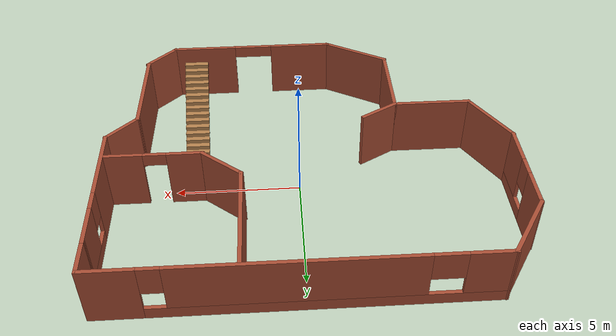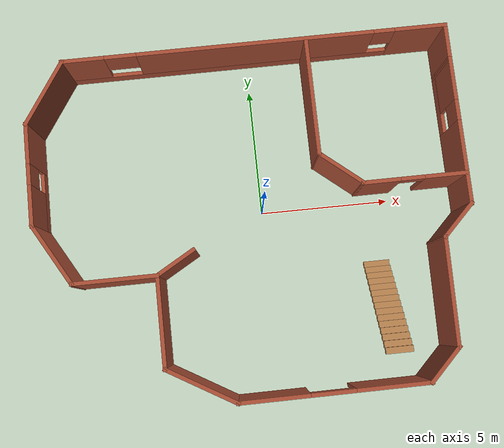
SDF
<?xml version='1.0'?>
<sdf version='1.7'>
  <model name='my_building'>
    <pose>-0.436912 -0.411084 0 0 -0 0</pose>

    <link name='Stairs_1'>
      <visual name='Stairs_1_Visual_0'>
        <pose>4.72294 -2.02924 0.083333 0 -0 0</pose>
        <geometry>
          <box>
            <size>1 0.233333 0.166667</size>
          </box>
        </geometry>
        <material>
          <script>
            <uri>file://media/materials/scripts/gazebo.material</uri>
            <name>Gazebo/Wood</name>
          </script>
          <ambient>1 1 1 1</ambient>
        </material>
        <meta>
          <layer>0</layer>
        </meta>
      </visual>
      <collision name='Stairs_1_Collision_0'>
        <geometry>
          <box>
            <size>1 0.233333 0.166667</size>
          </box>
        </geometry>
        <pose>4.72294 -2.02924 0.083333 0 -0 0</pose>
      </collision>
      <visual name='Stairs_1_Visual_1'>
        <pose>4.72294 -2.26257 0.25 0 -0 0</pose>
        <geometry>
          <box>
            <size>1 0.233333 0.166667</size>
          </box>
        </geometry>
        <material>
          <script>
            <uri>file://media/materials/scripts/gazebo.material</uri>
            <name>Gazebo/Wood</name>
          </script>
          <ambient>1 1 1 1</ambient>
        </material>
        <meta>
          <layer>0</layer>
        </meta>
      </visual>
      <collision name='Stairs_1_Collision_1'>
        <geometry>
          <box>
            <size>1 0.233333 0.166667</size>
          </box>
        </geometry>
        <pose>4.72294 -2.26257 0.25 0 -0 0</pose>
      </collision>
      <visual name='Stairs_1_Visual_2'>
        <pose>4.72294 -2.49591 0.416667 0 -0 0</pose>
        <geometry>
          <box>
            <size>1 0.233333 0.166667</size>
          </box>
        </geometry>
        <material>
          <script>
            <uri>file://media/materials/scripts/gazebo.material</uri>
            <name>Gazebo/Wood</name>
          </script>
          <ambient>1 1 1 1</ambient>
        </material>
        <meta>
          <layer>0</layer>
        </meta>
      </visual>
      <collision name='Stairs_1_Collision_2'>
        <geometry>
          <box>
            <size>1 0.233333 0.166667</size>
          </box>
        </geometry>
        <pose>4.72294 -2.49591 0.416667 0 -0 0</pose>
      </collision>
      <visual name='Stairs_1_Visual_3'>
        <pose>4.72294 -2.72924 0.583333 0 -0 0</pose>
        <geometry>
          <box>
            <size>1 0.233333 0.166667</size>
          </box>
        </geometry>
        <material>
          <script>
            <uri>file://media/materials/scripts/gazebo.material</uri>
            <name>Gazebo/Wood</name>
          </script>
          <ambient>1 1 1 1</ambient>
        </material>
        <meta>
          <layer>0</layer>
        </meta>
      </visual>
      <collision name='Stairs_1_Collision_3'>
        <geometry>
          <box>
            <size>1 0.233333 0.166667</size>
          </box>
        </geometry>
        <pose>4.72294 -2.72924 0.583333 0 -0 0</pose>
      </collision>
      <visual name='Stairs_1_Visual_4'>
        <pose>4.72294 -2.96257 0.75 0 -0 0</pose>
        <geometry>
          <box>
            <size>1 0.233333 0.166667</size>
          </box>
        </geometry>
        <material>
          <script>
            <uri>file://media/materials/scripts/gazebo.material</uri>
            <name>Gazebo/Wood</name>
          </script>
          <ambient>1 1 1 1</ambient>
        </material>
        <meta>
          <layer>0</layer>
        </meta>
      </visual>
      <collision name='Stairs_1_Collision_4'>
        <geometry>
          <box>
            <size>1 0.233333 0.166667</size>
          </box>
        </geometry>
        <pose>4.72294 -2.96257 0.75 0 -0 0</pose>
      </collision>
      <visual name='Stairs_1_Visual_5'>
        <pose>4.72294 -3.19591 0.916667 0 -0 0</pose>
        <geometry>
          <box>
            <size>1 0.233333 0.166667</size>
          </box>
        </geometry>
        <material>
          <script>
            <uri>file://media/materials/scripts/gazebo.material</uri>
            <name>Gazebo/Wood</name>
          </script>
          <ambient>1 1 1 1</ambient>
        </material>
        <meta>
          <layer>0</layer>
        </meta>
      </visual>
      <collision name='Stairs_1_Collision_5'>
        <geometry>
          <box>
            <size>1 0.233333 0.166667</size>
          </box>
        </geometry>
        <pose>4.72294 -3.19591 0.916667 0 -0 0</pose>
      </collision>
      <visual name='Stairs_1_Visual_6'>
        <pose>4.72294 -3.42924 1.08333 0 -0 0</pose>
        <geometry>
          <box>
            <size>1 0.233333 0.166667</size>
          </box>
        </geometry>
        <material>
          <script>
            <uri>file://media/materials/scripts/gazebo.material</uri>
            <name>Gazebo/Wood</name>
          </script>
          <ambient>1 1 1 1</ambient>
        </material>
        <meta>
          <layer>0</layer>
        </meta>
      </visual>
      <collision name='Stairs_1_Collision_6'>
        <geometry>
          <box>
            <size>1 0.233333 0.166667</size>
          </box>
        </geometry>
        <pose>4.72294 -3.42924 1.08333 0 -0 0</pose>
      </collision>
      <visual name='Stairs_1_Visual_7'>
        <pose>4.72294 -3.66257 1.25 0 -0 0</pose>
        <geometry>
          <box>
            <size>1 0.233333 0.166667</size>
          </box>
        </geometry>
        <material>
          <script>
            <uri>file://media/materials/scripts/gazebo.material</uri>
            <name>Gazebo/Wood</name>
          </script>
          <ambient>1 1 1 1</ambient>
        </material>
        <meta>
          <layer>0</layer>
        </meta>
      </visual>
      <collision name='Stairs_1_Collision_7'>
        <geometry>
          <box>
            <size>1 0.233333 0.166667</size>
          </box>
        </geometry>
        <pose>4.72294 -3.66257 1.25 0 -0 0</pose>
      </collision>
      <visual name='Stairs_1_Visual_8'>
        <pose>4.72294 -3.89591 1.41667 0 -0 0</pose>
        <geometry>
          <box>
            <size>1 0.233333 0.166667</size>
          </box>
        </geometry>
        <material>
          <script>
            <uri>file://media/materials/scripts/gazebo.material</uri>
            <name>Gazebo/Wood</name>
          </script>
          <ambient>1 1 1 1</ambient>
        </material>
        <meta>
          <layer>0</layer>
        </meta>
      </visual>
      <collision name='Stairs_1_Collision_8'>
        <geometry>
          <box>
            <size>1 0.233333 0.166667</size>
          </box>
        </geometry>
        <pose>4.72294 -3.89591 1.41667 0 -0 0</pose>
      </collision>
      <visual name='Stairs_1_Visual_9'>
        <pose>4.72294 -4.12924 1.58333 0 -0 0</pose>
        <geometry>
          <box>
            <size>1 0.233333 0.166667</size>
          </box>
        </geometry>
        <material>
          <script>
            <uri>file://media/materials/scripts/gazebo.material</uri>
            <name>Gazebo/Wood</name>
          </script>
          <ambient>1 1 1 1</ambient>
        </material>
        <meta>
          <layer>0</layer>
        </meta>
      </visual>
      <collision name='Stairs_1_Collision_9'>
        <geometry>
          <box>
            <size>1 0.233333 0.166667</size>
          </box>
        </geometry>
        <pose>4.72294 -4.12924 1.58333 0 -0 0</pose>
      </collision>
      <visual name='Stairs_1_Visual_10'>
        <pose>4.72294 -4.36257 1.75 0 -0 0</pose>
        <geometry>
          <box>
            <size>1 0.233333 0.166667</size>
          </box>
        </geometry>
        <material>
          <script>
            <uri>file://media/materials/scripts/gazebo.material</uri>
            <name>Gazebo/Wood</name>
          </script>
          <ambient>1 1 1 1</ambient>
        </material>
        <meta>
          <layer>0</layer>
        </meta>
      </visual>
      <collision name='Stairs_1_Collision_10'>
        <geometry>
          <box>
            <size>1 0.233333 0.166667</size>
          </box>
        </geometry>
        <pose>4.72294 -4.36257 1.75 0 -0 0</pose>
      </collision>
      <visual name='Stairs_1_Visual_11'>
        <pose>4.72294 -4.59591 1.91667 0 -0 0</pose>
        <geometry>
          <box>
            <size>1 0.233333 0.166667</size>
          </box>
        </geometry>
        <material>
          <script>
            <uri>file://media/materials/scripts/gazebo.material</uri>
            <name>Gazebo/Wood</name>
          </script>
          <ambient>1 1 1 1</ambient>
        </material>
        <meta>
          <layer>0</layer>
        </meta>
      </visual>
      <collision name='Stairs_1_Collision_11'>
        <geometry>
          <box>
            <size>1 0.233333 0.166667</size>
          </box>
        </geometry>
        <pose>4.72294 -4.59591 1.91667 0 -0 0</pose>
      </collision>
      <visual name='Stairs_1_Visual_12'>
        <pose>4.72294 -4.82924 2.08333 0 -0 0</pose>
        <geometry>
          <box>
            <size>1 0.233333 0.166667</size>
          </box>
        </geometry>
        <material>
          <script>
            <uri>file://media/materials/scripts/gazebo.material</uri>
            <name>Gazebo/Wood</name>
          </script>
          <ambient>1 1 1 1</ambient>
        </material>
        <meta>
          <layer>0</layer>
        </meta>
      </visual>
      <collision name='Stairs_1_Collision_12'>
        <geometry>
          <box>
            <size>1 0.233333 0.166667</size>
          </box>
        </geometry>
        <pose>4.72294 -4.82924 2.08333 0 -0 0</pose>
      </collision>
      <visual name='Stairs_1_Visual_13'>
        <pose>4.72294 -5.06257 2.25 0 -0 0</pose>
        <geometry>
          <box>
            <size>1 0.233333 0.166667</size>
          </box>
        </geometry>
        <material>
          <script>
            <uri>file://media/materials/scripts/gazebo.material</uri>
            <name>Gazebo/Wood</name>
          </script>
          <ambient>1 1 1 1</ambient>
        </material>
        <meta>
          <layer>0</layer>
        </meta>
      </visual>
      <collision name='Stairs_1_Collision_13'>
        <geometry>
          <box>
            <size>1 0.233333 0.166667</size>
          </box>
        </geometry>
        <pose>4.72294 -5.06257 2.25 0 -0 0</pose>
      </collision>
      <visual name='Stairs_1_Visual_14'>
        <pose>4.72294 -5.29591 2.41667 0 -0 0</pose>
        <geometry>
          <box>
            <size>1 0.233333 0.166667</size>
          </box>
        </geometry>
        <material>
          <script>
            <uri>file://media/materials/scripts/gazebo.material</uri>
            <name>Gazebo/Wood</name>
          </script>
          <ambient>1 1 1 1</ambient>
        </material>
        <meta>
          <layer>0</layer>
        </meta>
      </visual>
      <collision name='Stairs_1_Collision_14'>
        <geometry>
          <box>
            <size>1 0.233333 0.166667</size>
          </box>
        </geometry>
        <pose>4.72294 -5.29591 2.41667 0 -0 0</pose>
      </collision>
    </link>
    <link name='Wall_10'>
      <collision name='Wall_10_Collision'>
        <geometry>
          <box>
            <size>3 0.15 2.5</size>
          </box>
        </geometry>
        <pose>0 0 1.25 0 -0 0</pose>
      </collision>
      <visual name='Wall_10_Visual'>
        <pose>0 0 1.25 0 -0 0</pose>
        <geometry>
          <box>
            <size>3 0.15 2.5</size>
          </box>
        </geometry>
        <material>
          <script>
            <uri>file://media/materials/scripts/gazebo.material</uri>
            <name>Gazebo/Bricks</name>
          </script>
          <ambient>1 1 1 1</ambient>
        </material>
        <meta>
          <layer>0</layer>
        </meta>
      </visual>
      <pose>-2.41253 -5.86069 0 0 -0 -0.523599</pose>
    </link>
    <link name='Wall_14'>
      <collision name='Wall_14_Collision'>
        <geometry>
          <box>
            <size>1.75 0.15 2.5</size>
          </box>
        </geometry>
        <pose>0 0 1.25 0 -0 0</pose>
      </collision>
      <visual name='Wall_14_Visual'>
        <pose>0 0 1.25 0 -0 0</pose>
        <geometry>
          <box>
            <size>1.75 0.15 2.5</size>
          </box>
        </geometry>
        <material>
          <script>
            <uri>file://media/materials/scripts/gazebo.material</uri>
            <name>Gazebo/Bricks</name>
          </script>
          <ambient>1 1 1 1</ambient>
        </material>
        <meta>
          <layer>0</layer>
        </meta>
      </visual>
      <pose>6.3034 -5.9788 0 0 -0 0.785398</pose>
    </link>
    <link name='Wall_15'>
      <collision name='Wall_15_Collision'>
        <geometry>
          <box>
            <size>4.11046 0.15 2.5</size>
          </box>
        </geometry>
        <pose>0 0 1.25 0 -0 0</pose>
      </collision>
      <visual name='Wall_15_Visual'>
        <pose>0 0 1.25 0 -0 0</pose>
        <geometry>
          <box>
            <size>4.11046 0.15 2.5</size>
          </box>
        </geometry>
        <material>
          <script>
            <uri>file://media/materials/scripts/gazebo.material</uri>
            <name>Gazebo/Bricks</name>
          </script>
          <ambient>1 1 1 1</ambient>
        </material>
        <meta>
          <layer>0</layer>
        </meta>
      </visual>
      <pose>6.88008 -3.43316 0 0 -0 1.55415</pose>
    </link>
    <link name='Wall_16'>
      <collision name='Wall_16_Collision'>
        <geometry>
          <box>
            <size>1.75 0.15 2.5</size>
          </box>
        </geometry>
        <pose>0 0 1.25 0 -0 0</pose>
      </collision>
      <visual name='Wall_16_Visual'>
        <pose>0 0 1.25 0 -0 0</pose>
        <geometry>
          <box>
            <size>1.75 0.15 2.5</size>
          </box>
        </geometry>
        <material>
          <script>
            <uri>file://media/materials/scripts/gazebo.material</uri>
            <name>Gazebo/Bricks</name>
          </script>
          <ambient>1 1 1 1</ambient>
        </material>
        <meta>
          <layer>0</layer>
        </meta>
      </visual>
      <pose>7.47873 -0.887521 0 0 -0 0.785398</pose>
    </link>
    <link name='Wall_17'>
      <pose>8.03611 2.45705 0 0 -0 1.57379</pose>
      <visual name='Wall_17_Visual_0'>
        <pose>-1.23829 0 1.25 0 -0 0</pose>
        <geometry>
          <box>
            <size>3.23122 0.15 2.5</size>
          </box>
        </geometry>
        <material>
          <script>
            <uri>file://media/materials/scripts/gazebo.material</uri>
            <name>Gazebo/Bricks</name>
          </script>
          <ambient>1 1 1 1</ambient>
        </material>
        <meta>
          <layer>0</layer>
        </meta>
      </visual>
      <collision name='Wall_17_Collision_0'>
        <geometry>
          <box>
            <size>3.23122 0.15 2.5</size>
          </box>
        </geometry>
        <pose>-1.23829 0 1.25 0 -0 0</pose>
      </collision>
      <visual name='Wall_17_Visual_1'>
        <pose>1.61561 0 0.25 0 -0 0</pose>
        <geometry>
          <box>
            <size>2.47657 0.15 0.5</size>
          </box>
        </geometry>
        <material>
          <script>
            <uri>file://media/materials/scripts/gazebo.material</uri>
            <name>Gazebo/Bricks</name>
          </script>
          <ambient>1 1 1 1</ambient>
        </material>
        <meta>
          <layer>0</layer>
        </meta>
      </visual>
      <collision name='Wall_17_Collision_1'>
        <geometry>
          <box>
            <size>2.47657 0.15 0.5</size>
          </box>
        </geometry>
        <pose>1.61561 0 0.25 0 -0 0</pose>
      </collision>
      <visual name='Wall_17_Visual_2'>
        <pose>2.01561 0 1.5 0 -0 0</pose>
        <geometry>
          <box>
            <size>1.67657 0.15 2</size>
          </box>
        </geometry>
        <material>
          <script>
            <uri>file://media/materials/scripts/gazebo.material</uri>
            <name>Gazebo/Bricks</name>
          </script>
          <ambient>1 1 1 1</ambient>
        </material>
        <meta>
          <layer>0</layer>
        </meta>
      </visual>
      <collision name='Wall_17_Collision_2'>
        <geometry>
          <box>
            <size>1.67657 0.15 2</size>
          </box>
        </geometry>
        <pose>2.01561 0 1.5 0 -0 0</pose>
      </collision>
      <visual name='Wall_17_Visual_3'>
        <pose>0.777321 0 1.9 0 -0 0</pose>
        <geometry>
          <box>
            <size>0.8 0.15 1.2</size>
          </box>
        </geometry>
        <material>
          <script>
            <uri>file://media/materials/scripts/gazebo.material</uri>
            <name>Gazebo/Bricks</name>
          </script>
          <ambient>1 1 1 1</ambient>
        </material>
        <meta>
          <layer>0</layer>
        </meta>
      </visual>
      <collision name='Wall_17_Collision_3'>
        <geometry>
          <box>
            <size>0.8 0.15 1.2</size>
          </box>
        </geometry>
        <pose>0.777321 0 1.9 0 -0 0</pose>
      </collision>
    </link>
    <link name='Wall_18'>
      <collision name='Wall_18_Collision'>
        <geometry>
          <box>
            <size>1.5 0.15 2.5</size>
          </box>
        </geometry>
        <pose>0 0 1.25 0 -0 0</pose>
      </collision>
      <visual name='Wall_18_Visual'>
        <pose>0 0 1.25 0 -0 0</pose>
        <geometry>
          <box>
            <size>1.5 0.15 2.5</size>
          </box>
        </geometry>
        <material>
          <script>
            <uri>file://media/materials/scripts/gazebo.material</uri>
            <name>Gazebo/Bricks</name>
          </script>
          <ambient>0.929412 0.831373 0 1</ambient>
        </material>
        <meta>
          <layer>0</layer>
        </meta>
      </visual>
      <pose>8.0278 5.886 0 0 -0 1.5708</pose>
    </link>
    <link name='Wall_22'>
      <collision name='Wall_22_Collision'>
        <geometry>
          <box>
            <size>1.75 0.15 2.5</size>
          </box>
        </geometry>
        <pose>0 0 1.25 0 -0 0</pose>
      </collision>
      <visual name='Wall_22_Visual'>
        <pose>0 0 1.25 0 -0 0</pose>
        <geometry>
          <box>
            <size>1.75 0.15 2.5</size>
          </box>
        </geometry>
        <material>
          <script>
            <uri>file://media/materials/scripts/gazebo.material</uri>
            <name>Gazebo/Bricks</name>
          </script>
          <ambient>1 1 1 1</ambient>
        </material>
        <meta>
          <layer>0</layer>
        </meta>
      </visual>
      <pose>-2.9538 -1.39819 0 0 -0 0.523599</pose>
    </link>

    <link name='Wall_33'>
      <pose>2.27964 -6.55884 0 0 -0 0.00415</pose>
      <visual name='Wall_33_Visual_0'>
        <pose>-2.20117 0 1.25 0 -0 0</pose>
        <geometry>
          <box>
            <size>2.66389 0.15 2.5</size>
          </box>
        </geometry>
        <material>
          <script>
            <uri>file://media/materials/scripts/gazebo.material</uri>
            <name>Gazebo/Bricks</name>
          </script>
          <ambient>1 1 1 1</ambient>
        </material>
        <meta>
          <layer>0</layer>
        </meta>
      </visual>
      <collision name='Wall_33_Collision_0'>
        <geometry>
          <box>
            <size>2.66389 0.15 2.5</size>
          </box>
        </geometry>
        <pose>-2.20117 0 1.25 0 -0 0</pose>
      </collision>
      <visual name='Wall_33_Visual_1'>
        <pose>2.14418 0 1.25 0 -0 0</pose>
        <geometry>
          <box>
            <size>2.77786 0.15 2.5</size>
          </box>
        </geometry>
        <material>
          <script>
            <uri>file://media/materials/scripts/gazebo.material</uri>
            <name>Gazebo/Bricks</name>
          </script>
          <ambient>1 1 1 1</ambient>
        </material>
        <meta>
          <layer>0</layer>
        </meta>
      </visual>
      <collision name='Wall_33_Collision_1'>
        <geometry>
          <box>
            <size>2.77786 0.15 2.5</size>
          </box>
        </geometry>
        <pose>2.14418 0 1.25 0 -0 0</pose>
      </collision>
      <visual name='Wall_33_Visual_2'>
        <pose>-0.056989 0 2.25 0 -0 0</pose>
        <geometry>
          <box>
            <size>1.62447 0.15 0.5</size>
          </box>
        </geometry>
        <material>
          <script>
            <uri>file://media/materials/scripts/gazebo.material</uri>
            <name>Gazebo/Bricks</name>
          </script>
          <ambient>1 1 1 1</ambient>
        </material>
        <meta>
          <layer>0</layer>
        </meta>
      </visual>
      <collision name='Wall_33_Collision_2'>
        <geometry>
          <box>
            <size>1.62447 0.15 0.5</size>
          </box>
        </geometry>
        <pose>-0.056989 0 2.25 0 -0 0</pose>
      </collision>
    </link>
    <link name='Wall_35'>
      <collision name='Wall_35_Collision'>
        <geometry>
          <box>
            <size>4.5 0.15 2.5</size>
          </box>
        </geometry>
        <pose>0 0 1.25 0 -0 0</pose>
      </collision>
      <visual name='Wall_35_Visual'>
        <pose>0 0 1.25 0 -0 0</pose>
        <geometry>
          <box>
            <size>4.5 0.15 2.5</size>
          </box>
        </geometry>
        <material>
          <script>
            <uri>file://media/materials/scripts/gazebo.material</uri>
            <name>Gazebo/Bricks</name>
          </script>
          <ambient>1 1 1 1</ambient>
        </material>
        <meta>
          <layer>0</layer>
        </meta>
      </visual>
      <pose>2.70138 4.25976 0 0 -0 -1.5708</pose>
    </link>
    <link name='Wall_36'>
      <collision name='Wall_36_Collision'>
        <geometry>
          <box>
            <size>2.08029 0.15 2.5</size>
          </box>
        </geometry>
        <pose>0 0 1.25 0 -0 0</pose>
      </collision>
      <visual name='Wall_36_Visual'>
        <pose>0 0 1.25 0 -0 0</pose>
        <geometry>
          <box>
            <size>2.08029 0.15 2.5</size>
          </box>
        </geometry>
        <material>
          <script>
            <uri>file://media/materials/scripts/gazebo.material</uri>
            <name>Gazebo/Bricks</name>
          </script>
          <ambient>1 1 1 1</ambient>
        </material>
        <meta>
          <layer>0</layer>
        </meta>
      </visual>
      <pose>3.44443 1.46882 0 0 -0 -0.692137</pose>
    </link>
    <link name='Wall_37'>
      <pose>6.11248 0.827455 0 0 -0 0</pose>
      <visual name='Wall_37_Visual_0'>
        <pose>-1.26639 0 1.25 0 -0 0</pose>
        <geometry>
          <box>
            <size>1.46721 0.15 2.5</size>
          </box>
        </geometry>
        <material>
          <script>
            <uri>file://media/materials/scripts/gazebo.material</uri>
            <name>Gazebo/Bricks</name>
          </script>
          <ambient>1 1 1 1</ambient>
        </material>
        <meta>
          <layer>0</layer>
        </meta>
      </visual>
      <collision name='Wall_37_Collision_0'>
        <geometry>
          <box>
            <size>1.46721 0.15 2.5</size>
          </box>
        </geometry>
        <pose>-1.26639 0 1.25 0 -0 0</pose>
      </collision>
      <visual name='Wall_37_Visual_1'>
        <pose>1.18361 0 1.25 0 -0 0</pose>
        <geometry>
          <box>
            <size>1.63279 0.15 2.5</size>
          </box>
        </geometry>
        <material>
          <script>
            <uri>file://media/materials/scripts/gazebo.material</uri>
            <name>Gazebo/Bricks</name>
          </script>
          <ambient>1 1 1 1</ambient>
        </material>
        <meta>
          <layer>0</layer>
        </meta>
      </visual>
      <collision name='Wall_37_Collision_1'>
        <geometry>
          <box>
            <size>1.63279 0.15 2.5</size>
          </box>
        </geometry>
        <pose>1.18361 0 1.25 0 -0 0</pose>
      </collision>
      <visual name='Wall_37_Visual_2'>
        <pose>-0.082786 0 2.25 0 -0 0</pose>
        <geometry>
          <box>
            <size>0.9 0.15 0.5</size>
          </box>
        </geometry>
        <material>
          <script>
            <uri>file://media/materials/scripts/gazebo.material</uri>
            <name>Gazebo/Bricks</name>
          </script>
          <ambient>1 1 1 1</ambient>
        </material>
        <meta>
          <layer>0</layer>
        </meta>
      </visual>
      <collision name='Wall_37_Collision_2'>
        <geometry>
          <box>
            <size>0.9 0.15 0.5</size>
          </box>
        </geometry>
        <pose>-0.082786 0 2.25 0 -0 0</pose>
      </collision>
    </link>
    <link name='Wall_4'>
      <pose>0.727905 6.57177 0 0 -0 3.14159</pose>
      <visual name='Wall_4_Visual_0'>
        <pose>-6.37417 0 1.25 0 -0 0</pose>
        <geometry>
          <box>
            <size>2.00167 0.15 2.5</size>
          </box>
        </geometry>
        <material>
          <script>
            <uri>file://media/materials/scripts/gazebo.material</uri>
            <name>Gazebo/Bricks</name>
          </script>
          <ambient>1 1 1 1</ambient>
        </material>
        <meta>
          <layer>0</layer>
        </meta>
      </visual>
      <collision name='Wall_4_Collision_0'>
        <geometry>
          <box>
            <size>2.00167 0.15 2.5</size>
          </box>
        </geometry>
        <pose>-6.37417 0 1.25 0 -0 0</pose>
      </collision>
      <visual name='Wall_4_Visual_1'>
        <pose>1.00083 0 0.25 0 -0 0</pose>
        <geometry>
          <box>
            <size>12.7483 0.15 0.5</size>
          </box>
        </geometry>
        <material>
          <script>
            <uri>file://media/materials/scripts/gazebo.material</uri>
            <name>Gazebo/Bricks</name>
          </script>
          <ambient>1 1 1 1</ambient>
        </material>
        <meta>
          <layer>0</layer>
        </meta>
      </visual>
      <collision name='Wall_4_Collision_1'>
        <geometry>
          <box>
            <size>12.7483 0.15 0.5</size>
          </box>
        </geometry>
        <pose>1.00083 0 0.25 0 -0 0</pose>
      </collision>
      <visual name='Wall_4_Visual_2'>
        <pose>-0.052096 0 1.5 0 -0 0</pose>
        <geometry>
          <box>
            <size>9.04248 0.15 2</size>
          </box>
        </geometry>
        <material>
          <script>
            <uri>file://media/materials/scripts/gazebo.material</uri>
            <name>Gazebo/Bricks</name>
          </script>
          <ambient>1 1 1 1</ambient>
        </material>
        <meta>
          <layer>0</layer>
        </meta>
      </visual>
      <collision name='Wall_4_Collision_2'>
        <geometry>
          <box>
            <size>9.04248 0.15 2</size>
          </box>
        </geometry>
        <pose>-0.052096 0 1.5 0 -0 0</pose>
      </collision>
      <visual name='Wall_4_Visual_3'>
        <pose>6.52905 0 1.5 0 -0 0</pose>
        <geometry>
          <box>
            <size>1.6919 0.15 2</size>
          </box>
        </geometry>
        <material>
          <script>
            <uri>file://media/materials/scripts/gazebo.material</uri>
            <name>Gazebo/Bricks</name>
          </script>
          <ambient>1 1 1 1</ambient>
        </material>
        <meta>
          <layer>0</layer>
        </meta>
      </visual>
      <collision name='Wall_4_Collision_3'>
        <geometry>
          <box>
            <size>1.6919 0.15 2</size>
          </box>
        </geometry>
        <pose>6.52905 0 1.5 0 -0 0</pose>
      </collision>
      <visual name='Wall_4_Visual_4'>
        <pose>-4.97333 0 1.9 0 -0 0</pose>
        <geometry>
          <box>
            <size>0.8 0.15 1.2</size>
          </box>
        </geometry>
        <material>
          <script>
            <uri>file://media/materials/scripts/gazebo.material</uri>
            <name>Gazebo/Bricks</name>
          </script>
          <ambient>1 1 1 1</ambient>
        </material>
        <meta>
          <layer>0</layer>
        </meta>
      </visual>
      <collision name='Wall_4_Collision_4'>
        <geometry>
          <box>
            <size>0.8 0.15 1.2</size>
          </box>
        </geometry>
        <pose>-4.97333 0 1.9 0 -0 0</pose>
      </collision>
      <visual name='Wall_4_Visual_5'>
        <pose>5.07612 0 1.9 0 -0 0</pose>
        <geometry>
          <box>
            <size>1.21396 0.15 1.2</size>
          </box>
        </geometry>
        <material>
          <script>
            <uri>file://media/materials/scripts/gazebo.material</uri>
            <name>Gazebo/Bricks</name>
          </script>
          <ambient>1 1 1 1</ambient>
        </material>
        <meta>
          <layer>0</layer>
        </meta>
      </visual>
      <collision name='Wall_4_Collision_5'>
        <geometry>
          <box>
            <size>1.21396 0.15 1.2</size>
          </box>
        </geometry>
        <pose>5.07612 0 1.9 0 -0 0</pose>
      </collision>
    </link>
    <link name='Wall_5'>
      <collision name='Wall_5_Collision'>
        <geometry>
          <box>
            <size>2.86452 0.15 2.5</size>
          </box>
        </geometry>
        <pose>0 0 1.25 0 -0 0</pose>
      </collision>
      <visual name='Wall_5_Visual'>
        <pose>0 0 1.25 0 -0 0</pose>
        <geometry>
          <box>
            <size>2.86452 0.15 2.5</size>
          </box>
        </geometry>
        <material>
          <script>
            <uri>file://media/materials/scripts/gazebo.material</uri>
            <name>Gazebo/Bricks</name>
          </script>
          <ambient>1 1 1 1</ambient>
        </material>
        <meta>
          <layer>0</layer>
        </meta>
      </visual>
      <pose>-7.30105 5.43762 0 0 -0 -2.15235</pose>
    </link>
    <link name='Wall_6'>
      <pose>-8.04662 2.37848 0 0 -0 -1.5708</pose>
      <visual name='Wall_6_Visual_0'>
        <pose>-1.20649 0 1.25 0 -0 0</pose>
        <geometry>
          <box>
            <size>1.58702 0.15 2.5</size>
          </box>
        </geometry>
        <material>
          <script>
            <uri>file://media/materials/scripts/gazebo.material</uri>
            <name>Gazebo/Bricks</name>
          </script>
          <ambient>1 1 1 1</ambient>
        </material>
        <meta>
          <layer>0</layer>
        </meta>
      </visual>
      <collision name='Wall_6_Collision_0'>
        <geometry>
          <box>
            <size>1.58702 0.15 2.5</size>
          </box>
        </geometry>
        <pose>-1.20649 0 1.25 0 -0 0</pose>
      </collision>
      <visual name='Wall_6_Visual_1'>
        <pose>0.793508 0 0.25 0 -0 0</pose>
        <geometry>
          <box>
            <size>2.41298 0.15 0.5</size>
          </box>
        </geometry>
        <material>
          <script>
            <uri>file://media/materials/scripts/gazebo.material</uri>
            <name>Gazebo/Bricks</name>
          </script>
          <ambient>1 1 1 1</ambient>
        </material>
        <meta>
          <layer>0</layer>
        </meta>
      </visual>
      <collision name='Wall_6_Collision_1'>
        <geometry>
          <box>
            <size>2.41298 0.15 0.5</size>
          </box>
        </geometry>
        <pose>0.793508 0 0.25 0 -0 0</pose>
      </collision>
      <visual name='Wall_6_Visual_2'>
        <pose>1.19351 0 1.5 0 -0 0</pose>
        <geometry>
          <box>
            <size>1.61298 0.15 2</size>
          </box>
        </geometry>
        <material>
          <script>
            <uri>file://media/materials/scripts/gazebo.material</uri>
            <name>Gazebo/Bricks</name>
          </script>
          <ambient>1 1 1 1</ambient>
        </material>
        <meta>
          <layer>0</layer>
        </meta>
      </visual>
      <collision name='Wall_6_Collision_2'>
        <geometry>
          <box>
            <size>1.61298 0.15 2</size>
          </box>
        </geometry>
        <pose>1.19351 0 1.5 0 -0 0</pose>
      </collision>
      <visual name='Wall_6_Visual_3'>
        <pose>-0.012984 0 1.9 0 -0 0</pose>
        <geometry>
          <box>
            <size>0.8 0.15 1.2</size>
          </box>
        </geometry>
        <material>
          <script>
            <uri>file://media/materials/scripts/gazebo.material</uri>
            <name>Gazebo/Bricks</name>
          </script>
          <ambient>1 1 1 1</ambient>
        </material>
        <meta>
          <layer>0</layer>
        </meta>
      </visual>
      <collision name='Wall_6_Collision_3'>
        <geometry>
          <box>
            <size>0.8 0.15 1.2</size>
          </box>
        </geometry>
        <pose>-0.012984 0 1.9 0 -0 0</pose>
      </collision>
    </link>
    <link name='Wall_7'>
      <collision name='Wall_7_Collision'>
        <geometry>
          <box>
            <size>2.75 0.15 2.5</size>
          </box>
        </geometry>
        <pose>0 0 1.25 0 -0 0</pose>
      </collision>
      <visual name='Wall_7_Visual'>
        <pose>0 0 1.25 0 -0 0</pose>
        <geometry>
          <box>
            <size>2.75 0.15 2.5</size>
          </box>
        </geometry>
        <material>
          <script>
            <uri>file://media/materials/scripts/gazebo.material</uri>
            <name>Gazebo/Bricks</name>
          </script>
          <ambient>1 1 1 1</ambient>
        </material>
        <meta>
          <layer>0</layer>
        </meta>
      </visual>
      <pose>-7.39662 -0.672353 0 0 -0 -1.0472</pose>
    </link>
    <link name='Wall_8'>
      <collision name='Wall_8_Collision'>
        <geometry>
          <box>
            <size>3.25 0.15 2.5</size>
          </box>
        </geometry>
        <pose>0 0 1.25 0 -0 0</pose>
      </collision>
      <visual name='Wall_8_Visual'>
        <pose>0 0 1.25 0 -0 0</pose>
        <geometry>
          <box>
            <size>3.25 0.15 2.5</size>
          </box>
        </geometry>
        <material>
          <script>
            <uri>file://media/materials/scripts/gazebo.material</uri>
            <name>Gazebo/Bricks</name>
          </script>
          <ambient>1 1 1 1</ambient>
        </material>
        <meta>
          <layer>0</layer>
        </meta>
      </visual>
      <pose>-5.19662 -1.79819 0 0 -0 0</pose>
    </link>
    <link name='Wall_9'>
      <collision name='Wall_9_Collision'>
        <geometry>
          <box>
            <size>3.5 0.15 2.5</size>
          </box>
        </geometry>
        <pose>0 0 1.25 0 -0 0</pose>
      </collision>
      <visual name='Wall_9_Visual'>
        <pose>0 0 1.25 0 -0 0</pose>
        <geometry>
          <box>
            <size>3.5 0.15 2.5</size>
          </box>
        </geometry>
        <material>
          <script>
            <uri>file://media/materials/scripts/gazebo.material</uri>
            <name>Gazebo/Bricks</name>
          </script>
          <ambient>1 1 1 1</ambient>
        </material>
        <meta>
          <layer>0</layer>
        </meta>
      </visual>
      <pose>-3.64662 -3.47319 0 0 -0 -1.5708</pose>
    </link>
    <static>1</static>
  </model>
</sdf>
